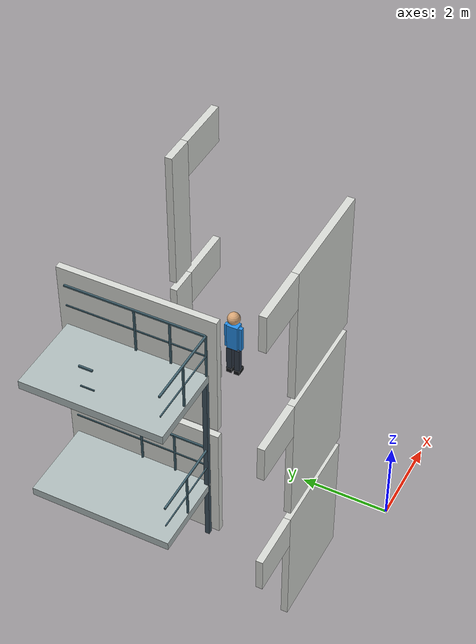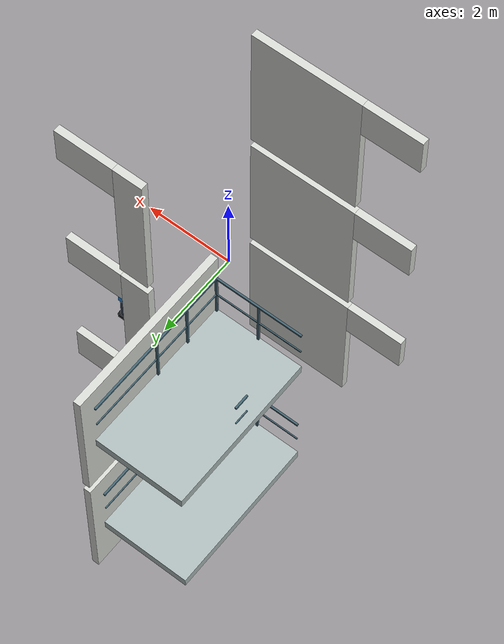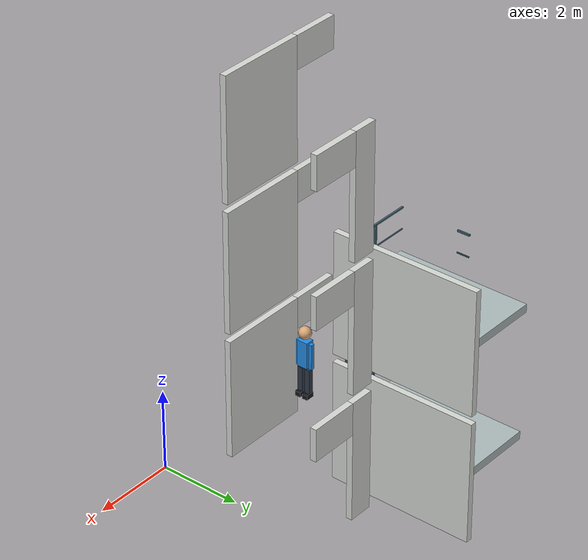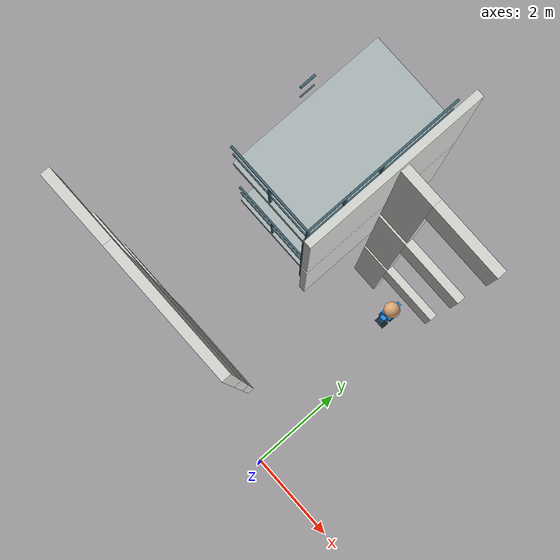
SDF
<sdf version="1.6">
 <world name="three_floor">
  <model name="f1_wall_024">
   <static>true</static>
   <pose>-2.325 0.8 1.5 0 0 0</pose>
   <link name="f1_wall_024_link">
    <collision name="f1_wall_024_collision"><geometry><box><size>2.25 0.15 3</size></box></geometry></collision>
    <visual name="f1_wall_024_visual">
     <geometry><box><size>2.25 0.15 3</size></box></geometry>
     <material><ambient>.84 .85 .83 1</ambient><diffuse>.84 .85 .83 1</diffuse></material>
    </visual>
   </link>
  </model>
  <model name="f1_wall_029">
   <static>true</static>
   <pose>-2.1 4.8 1.5 0 0 0</pose>
   <link name="f1_wall_029_link">
    <collision name="f1_wall_029_collision"><geometry><box><size>0.15 3.6 3</size></box></geometry></collision>
    <visual name="f1_wall_029_visual">
     <geometry><box><size>0.15 3.6 3</size></box></geometry>
     <material><ambient>.84 .85 .83 1</ambient><diffuse>.84 .85 .83 1</diffuse></material>
    </visual>
   </link>
  </model>
  <model name="f1_wall_036">
   <static>true</static>
   <pose>-1.4 4.2 1.5 0 0 0</pose>
   <link name="f1_wall_036_link">
    <collision name="f1_wall_036_collision"><geometry><box><size>0.6 0.15 3</size></box></geometry></collision>
    <visual name="f1_wall_036_visual">
     <geometry><box><size>0.6 0.15 3</size></box></geometry>
     <material><ambient>.84 .85 .83 1</ambient><diffuse>.84 .85 .83 1</diffuse></material>
    </visual>
   </link>
  </model>
  <model name="f1_lintel_south_west_2">
   <static>true</static>
   <pose>-4.05 0.8 2.6 0 0 0</pose>
   <link name="f1_lintel_south_west_2_link">
    <collision name="f1_lintel_south_west_2_collision">
     <geometry><box><size>1.2 0.15 0.8</size></box></geometry>
    </collision>
    <visual name="f1_lintel_south_west_2_visual">
     <geometry><box><size>1.2 0.15 0.8</size></box></geometry>
     <material><ambient>.84 .85 .83 1</ambient><diffuse>.84 .85 .83 1</diffuse></material>
    </visual>
   </link>
  </model>
  <model name="f1_lintel_lift">
   <static>true</static>
   <pose>-0.5 4.2 2.6 0 0 0</pose>
   <link name="f1_lintel_lift_link">
    <collision name="f1_lintel_lift_collision">
     <geometry><box><size>1.2 0.15 0.8</size></box></geometry>
    </collision>
    <visual name="f1_lintel_lift_visual">
     <geometry><box><size>1.2 0.15 0.8</size></box></geometry>
     <material><ambient>.84 .85 .83 1</ambient><diffuse>.84 .85 .83 1</diffuse></material>
    </visual>
   </link>
  </model>
  <model name="f2_wall_024">
   <static>true</static>
   <pose>-2.325 0.8 4.7 0 0 0</pose>
   <link name="f2_wall_024_link">
    <collision name="f2_wall_024_collision"><geometry><box><size>2.25 0.15 3</size></box></geometry></collision>
    <visual name="f2_wall_024_visual">
     <geometry><box><size>2.25 0.15 3</size></box></geometry>
     <material><ambient>.84 .85 .83 1</ambient><diffuse>.84 .85 .83 1</diffuse></material>
    </visual>
   </link>
  </model>
  <model name="f2_wall_029">
   <static>true</static>
   <pose>-2.1 4.8 4.7 0 0 0</pose>
   <link name="f2_wall_029_link">
    <collision name="f2_wall_029_collision"><geometry><box><size>0.15 3.6 3</size></box></geometry></collision>
    <visual name="f2_wall_029_visual">
     <geometry><box><size>0.15 3.6 3</size></box></geometry>
     <material><ambient>.84 .85 .83 1</ambient><diffuse>.84 .85 .83 1</diffuse></material>
    </visual>
   </link>
  </model>
  <model name="f2_wall_036">
   <static>true</static>
   <pose>-1.4 4.2 4.7 0 0 0</pose>
   <link name="f2_wall_036_link">
    <collision name="f2_wall_036_collision"><geometry><box><size>0.6 0.15 3</size></box></geometry></collision>
    <visual name="f2_wall_036_visual">
     <geometry><box><size>0.6 0.15 3</size></box></geometry>
     <material><ambient>.84 .85 .83 1</ambient><diffuse>.84 .85 .83 1</diffuse></material>
    </visual>
   </link>
  </model>
  <model name="f2_lintel_south_west_2">
   <static>true</static>
   <pose>-4.05 0.8 5.8 0 0 0</pose>
   <link name="f2_lintel_south_west_2_link">
    <collision name="f2_lintel_south_west_2_collision">
     <geometry><box><size>1.2 0.15 0.8</size></box></geometry>
    </collision>
    <visual name="f2_lintel_south_west_2_visual">
     <geometry><box><size>1.2 0.15 0.8</size></box></geometry>
     <material><ambient>.84 .85 .83 1</ambient><diffuse>.84 .85 .83 1</diffuse></material>
    </visual>
   </link>
  </model>
  <model name="f2_lintel_lift">
   <static>true</static>
   <pose>-0.5 4.2 5.8 0 0 0</pose>
   <link name="f2_lintel_lift_link">
    <collision name="f2_lintel_lift_collision">
     <geometry><box><size>1.2 0.15 0.8</size></box></geometry>
    </collision>
    <visual name="f2_lintel_lift_visual">
     <geometry><box><size>1.2 0.15 0.8</size></box></geometry>
     <material><ambient>.84 .85 .83 1</ambient><diffuse>.84 .85 .83 1</diffuse></material>
    </visual>
   </link>
  </model>
  <model name="f3_wall_024">
   <static>true</static>
   <pose>-2.325 0.8 7.9 0 0 0</pose>
   <link name="f3_wall_024_link">
    <collision name="f3_wall_024_collision"><geometry><box><size>2.25 0.15 3</size></box></geometry></collision>
    <visual name="f3_wall_024_visual">
     <geometry><box><size>2.25 0.15 3</size></box></geometry>
     <material><ambient>.84 .85 .83 1</ambient><diffuse>.84 .85 .83 1</diffuse></material>
    </visual>
   </link>
  </model>
  <model name="f3_wall_036">
   <static>true</static>
   <pose>-1.4 4.2 7.9 0 0 0</pose>
   <link name="f3_wall_036_link">
    <collision name="f3_wall_036_collision"><geometry><box><size>0.6 0.15 3</size></box></geometry></collision>
    <visual name="f3_wall_036_visual">
     <geometry><box><size>0.6 0.15 3</size></box></geometry>
     <material><ambient>.84 .85 .83 1</ambient><diffuse>.84 .85 .83 1</diffuse></material>
    </visual>
   </link>
  </model>
  <model name="f3_lintel_south_west_2">
   <static>true</static>
   <pose>-4.05 0.8 9 0 0 0</pose>
   <link name="f3_lintel_south_west_2_link">
    <collision name="f3_lintel_south_west_2_collision">
     <geometry><box><size>1.2 0.15 0.8</size></box></geometry>
    </collision>
    <visual name="f3_lintel_south_west_2_visual">
     <geometry><box><size>1.2 0.15 0.8</size></box></geometry>
     <material><ambient>.84 .85 .83 1</ambient><diffuse>.84 .85 .83 1</diffuse></material>
    </visual>
   </link>
  </model>
  <model name="f3_lintel_lift">
   <static>true</static>
   <pose>-0.5 4.2 9 0 0 0</pose>
   <link name="f3_lintel_lift_link">
    <collision name="f3_lintel_lift_collision">
     <geometry><box><size>1.2 0.15 0.8</size></box></geometry>
    </collision>
    <visual name="f3_lintel_lift_visual">
     <geometry><box><size>1.2 0.15 0.8</size></box></geometry>
     <material><ambient>.84 .85 .83 1</ambient><diffuse>.84 .85 .83 1</diffuse></material>
    </visual>
   </link>
  </model>
  <model name="f1_stair_mid_landing">
   <static>true</static>
   <pose>-3.175 4.775 1.5 0 0 0</pose>
   <link name="f1_stair_mid_landing_link">
    <collision name="f1_stair_mid_landing_collision">
     <geometry><box><size>1.85 3.25 0.2</size></box></geometry>
     <surface><friction><ode><mu>1.0</mu><mu2>1.0</mu2></ode></friction></surface>
    </collision>
    <visual name="f1_stair_mid_landing_visual">
     <geometry><box><size>1.85 3.25 0.2</size></box></geometry>
     <material>
      <ambient>0.68 0.73 0.73 1</ambient>
      <diffuse>0.68 0.73 0.73 1</diffuse>
      <specular>0.04 0.04 0.04 1</specular>
     </material>
    </visual>
   </link>
  </model>
  <model name="f1_stair_mid_south_guard_top">
   <static>true</static>
   <pose>-3.19 3.18 2.68 0 0 0</pose>
   <link name="f1_stair_mid_south_guard_top_link">
    <collision name="f1_stair_mid_south_guard_top_collision">
     <geometry><box><size>1.82 0.04 0.04</size></box></geometry>
    </collision>
    <visual name="f1_stair_mid_south_guard_top_visual">
     <geometry><box><size>1.82 0.04 0.04</size></box></geometry>
     <material>
      <ambient>0.26 0.39 0.44 1</ambient>
      <diffuse>0.26 0.39 0.44 1</diffuse>
      <specular>0.04 0.04 0.04 1</specular>
     </material>
    </visual>
   </link>
  </model>
  <model name="f1_stair_mid_south_guard_mid">
   <static>true</static>
   <pose>-3.19 3.18 2.15 0 0 0</pose>
   <link name="f1_stair_mid_south_guard_mid_link">
    <collision name="f1_stair_mid_south_guard_mid_collision">
     <geometry><box><size>1.82 0.025 0.025</size></box></geometry>
    </collision>
    <visual name="f1_stair_mid_south_guard_mid_visual">
     <geometry><box><size>1.82 0.025 0.025</size></box></geometry>
     <material>
      <ambient>0.26 0.39 0.44 1</ambient>
      <diffuse>0.26 0.39 0.44 1</diffuse>
      <specular>0.04 0.04 0.04 1</specular>
     </material>
    </visual>
   </link>
  </model>
  <model name="f1_stair_mid_south_guard_post_01">
   <static>true</static>
   <pose>-3.19 3.18 2.14 0 0 0</pose>
   <link name="f1_stair_mid_south_guard_post_01_link">
    <collision name="f1_stair_mid_south_guard_post_01_collision">
     <geometry><box><size>0.04 0.04 1.08</size></box></geometry>
    </collision>
    <visual name="f1_stair_mid_south_guard_post_01_visual">
     <geometry><box><size>0.04 0.04 1.08</size></box></geometry>
     <material>
      <ambient>0.26 0.39 0.44 1</ambient>
      <diffuse>0.26 0.39 0.44 1</diffuse>
      <specular>0.04 0.04 0.04 1</specular>
     </material>
    </visual>
   </link>
  </model>
  <model name="f1_stair_mid_south_guard_post_02">
   <static>true</static>
   <pose>-2.28 3.18 2.14 0 0 0</pose>
   <link name="f1_stair_mid_south_guard_post_02_link">
    <collision name="f1_stair_mid_south_guard_post_02_collision">
     <geometry><box><size>0.04 0.04 1.08</size></box></geometry>
    </collision>
    <visual name="f1_stair_mid_south_guard_post_02_visual">
     <geometry><box><size>0.04 0.04 1.08</size></box></geometry>
     <material>
      <ambient>0.26 0.39 0.44 1</ambient>
      <diffuse>0.26 0.39 0.44 1</diffuse>
      <specular>0.04 0.04 0.04 1</specular>
     </material>
    </visual>
   </link>
  </model>
  <model name="f1_stair_mid_east_guard_top">
   <static>true</static>
   <pose>-2.28 4.775 2.68 0 0 1.570796327</pose>
   <link name="f1_stair_mid_east_guard_top_link">
    <collision name="f1_stair_mid_east_guard_top_collision">
     <geometry><box><size>3.19 0.04 0.04</size></box></geometry>
    </collision>
    <visual name="f1_stair_mid_east_guard_top_visual">
     <geometry><box><size>3.19 0.04 0.04</size></box></geometry>
     <material>
      <ambient>0.26 0.39 0.44 1</ambient>
      <diffuse>0.26 0.39 0.44 1</diffuse>
      <specular>0.04 0.04 0.04 1</specular>
     </material>
    </visual>
   </link>
  </model>
  <model name="f1_stair_mid_east_guard_mid">
   <static>true</static>
   <pose>-2.28 4.775 2.15 0 0 1.570796327</pose>
   <link name="f1_stair_mid_east_guard_mid_link">
    <collision name="f1_stair_mid_east_guard_mid_collision">
     <geometry><box><size>3.19 0.025 0.025</size></box></geometry>
    </collision>
    <visual name="f1_stair_mid_east_guard_mid_visual">
     <geometry><box><size>3.19 0.025 0.025</size></box></geometry>
     <material>
      <ambient>0.26 0.39 0.44 1</ambient>
      <diffuse>0.26 0.39 0.44 1</diffuse>
      <specular>0.04 0.04 0.04 1</specular>
     </material>
    </visual>
   </link>
  </model>
  <model name="f1_stair_mid_east_guard_post_00">
   <static>true</static>
   <pose>-2.28 3.18 2.14 0 0 0</pose>
   <link name="f1_stair_mid_east_guard_post_00_link">
    <collision name="f1_stair_mid_east_guard_post_00_collision">
     <geometry><box><size>0.04 0.04 1.08</size></box></geometry>
    </collision>
    <visual name="f1_stair_mid_east_guard_post_00_visual">
     <geometry><box><size>0.04 0.04 1.08</size></box></geometry>
     <material>
      <ambient>0.26 0.39 0.44 1</ambient>
      <diffuse>0.26 0.39 0.44 1</diffuse>
      <specular>0.04 0.04 0.04 1</specular>
     </material>
    </visual>
   </link>
  </model>
  <model name="f1_stair_mid_east_guard_post_01">
   <static>true</static>
   <pose>-2.28 3.9775 2.14 0 0 0</pose>
   <link name="f1_stair_mid_east_guard_post_01_link">
    <collision name="f1_stair_mid_east_guard_post_01_collision">
     <geometry><box><size>0.04 0.04 1.08</size></box></geometry>
    </collision>
    <visual name="f1_stair_mid_east_guard_post_01_visual">
     <geometry><box><size>0.04 0.04 1.08</size></box></geometry>
     <material>
      <ambient>0.26 0.39 0.44 1</ambient>
      <diffuse>0.26 0.39 0.44 1</diffuse>
      <specular>0.04 0.04 0.04 1</specular>
     </material>
    </visual>
   </link>
  </model>
  <model name="f1_stair_mid_east_guard_post_02">
   <static>true</static>
   <pose>-2.28 4.775 2.14 0 0 0</pose>
   <link name="f1_stair_mid_east_guard_post_02_link">
    <collision name="f1_stair_mid_east_guard_post_02_collision">
     <geometry><box><size>0.04 0.04 1.08</size></box></geometry>
    </collision>
    <visual name="f1_stair_mid_east_guard_post_02_visual">
     <geometry><box><size>0.04 0.04 1.08</size></box></geometry>
     <material>
      <ambient>0.26 0.39 0.44 1</ambient>
      <diffuse>0.26 0.39 0.44 1</diffuse>
      <specular>0.04 0.04 0.04 1</specular>
     </material>
    </visual>
   </link>
  </model>
  <model name="f2_stair_mid_landing">
   <static>true</static>
   <pose>-3.175 4.775 4.7 0 0 0</pose>
   <link name="f2_stair_mid_landing_link">
    <collision name="f2_stair_mid_landing_collision">
     <geometry><box><size>1.85 3.25 0.2</size></box></geometry>
     <surface><friction><ode><mu>1.0</mu><mu2>1.0</mu2></ode></friction></surface>
    </collision>
    <visual name="f2_stair_mid_landing_visual">
     <geometry><box><size>1.85 3.25 0.2</size></box></geometry>
     <material>
      <ambient>0.68 0.73 0.73 1</ambient>
      <diffuse>0.68 0.73 0.73 1</diffuse>
      <specular>0.04 0.04 0.04 1</specular>
     </material>
    </visual>
   </link>
  </model>
  <model name="f2_stair_mid_south_guard_top">
   <static>true</static>
   <pose>-3.19 3.18 5.88 0 0 0</pose>
   <link name="f2_stair_mid_south_guard_top_link">
    <collision name="f2_stair_mid_south_guard_top_collision">
     <geometry><box><size>1.82 0.04 0.04</size></box></geometry>
    </collision>
    <visual name="f2_stair_mid_south_guard_top_visual">
     <geometry><box><size>1.82 0.04 0.04</size></box></geometry>
     <material>
      <ambient>0.26 0.39 0.44 1</ambient>
      <diffuse>0.26 0.39 0.44 1</diffuse>
      <specular>0.04 0.04 0.04 1</specular>
     </material>
    </visual>
   </link>
  </model>
  <model name="f2_stair_mid_south_guard_mid">
   <static>true</static>
   <pose>-3.19 3.18 5.35 0 0 0</pose>
   <link name="f2_stair_mid_south_guard_mid_link">
    <collision name="f2_stair_mid_south_guard_mid_collision">
     <geometry><box><size>1.82 0.025 0.025</size></box></geometry>
    </collision>
    <visual name="f2_stair_mid_south_guard_mid_visual">
     <geometry><box><size>1.82 0.025 0.025</size></box></geometry>
     <material>
      <ambient>0.26 0.39 0.44 1</ambient>
      <diffuse>0.26 0.39 0.44 1</diffuse>
      <specular>0.04 0.04 0.04 1</specular>
     </material>
    </visual>
   </link>
  </model>
  <model name="f2_stair_mid_south_guard_post_01">
   <static>true</static>
   <pose>-3.19 3.18 5.34 0 0 0</pose>
   <link name="f2_stair_mid_south_guard_post_01_link">
    <collision name="f2_stair_mid_south_guard_post_01_collision">
     <geometry><box><size>0.04 0.04 1.08</size></box></geometry>
    </collision>
    <visual name="f2_stair_mid_south_guard_post_01_visual">
     <geometry><box><size>0.04 0.04 1.08</size></box></geometry>
     <material>
      <ambient>0.26 0.39 0.44 1</ambient>
      <diffuse>0.26 0.39 0.44 1</diffuse>
      <specular>0.04 0.04 0.04 1</specular>
     </material>
    </visual>
   </link>
  </model>
  <model name="f2_stair_mid_south_guard_post_02">
   <static>true</static>
   <pose>-2.28 3.18 5.34 0 0 0</pose>
   <link name="f2_stair_mid_south_guard_post_02_link">
    <collision name="f2_stair_mid_south_guard_post_02_collision">
     <geometry><box><size>0.04 0.04 1.08</size></box></geometry>
    </collision>
    <visual name="f2_stair_mid_south_guard_post_02_visual">
     <geometry><box><size>0.04 0.04 1.08</size></box></geometry>
     <material>
      <ambient>0.26 0.39 0.44 1</ambient>
      <diffuse>0.26 0.39 0.44 1</diffuse>
      <specular>0.04 0.04 0.04 1</specular>
     </material>
    </visual>
   </link>
  </model>
  <model name="f2_stair_mid_east_guard_top">
   <static>true</static>
   <pose>-2.28 4.775 5.88 0 0 1.570796327</pose>
   <link name="f2_stair_mid_east_guard_top_link">
    <collision name="f2_stair_mid_east_guard_top_collision">
     <geometry><box><size>3.19 0.04 0.04</size></box></geometry>
    </collision>
    <visual name="f2_stair_mid_east_guard_top_visual">
     <geometry><box><size>3.19 0.04 0.04</size></box></geometry>
     <material>
      <ambient>0.26 0.39 0.44 1</ambient>
      <diffuse>0.26 0.39 0.44 1</diffuse>
      <specular>0.04 0.04 0.04 1</specular>
     </material>
    </visual>
   </link>
  </model>
  <model name="f2_stair_mid_east_guard_mid">
   <static>true</static>
   <pose>-2.28 4.775 5.35 0 0 1.570796327</pose>
   <link name="f2_stair_mid_east_guard_mid_link">
    <collision name="f2_stair_mid_east_guard_mid_collision">
     <geometry><box><size>3.19 0.025 0.025</size></box></geometry>
    </collision>
    <visual name="f2_stair_mid_east_guard_mid_visual">
     <geometry><box><size>3.19 0.025 0.025</size></box></geometry>
     <material>
      <ambient>0.26 0.39 0.44 1</ambient>
      <diffuse>0.26 0.39 0.44 1</diffuse>
      <specular>0.04 0.04 0.04 1</specular>
     </material>
    </visual>
   </link>
  </model>
  <model name="f2_stair_mid_east_guard_post_00">
   <static>true</static>
   <pose>-2.28 3.18 5.34 0 0 0</pose>
   <link name="f2_stair_mid_east_guard_post_00_link">
    <collision name="f2_stair_mid_east_guard_post_00_collision">
     <geometry><box><size>0.04 0.04 1.08</size></box></geometry>
    </collision>
    <visual name="f2_stair_mid_east_guard_post_00_visual">
     <geometry><box><size>0.04 0.04 1.08</size></box></geometry>
     <material>
      <ambient>0.26 0.39 0.44 1</ambient>
      <diffuse>0.26 0.39 0.44 1</diffuse>
      <specular>0.04 0.04 0.04 1</specular>
     </material>
    </visual>
   </link>
  </model>
  <model name="f2_stair_mid_east_guard_post_01">
   <static>true</static>
   <pose>-2.28 3.9775 5.34 0 0 0</pose>
   <link name="f2_stair_mid_east_guard_post_01_link">
    <collision name="f2_stair_mid_east_guard_post_01_collision">
     <geometry><box><size>0.04 0.04 1.08</size></box></geometry>
    </collision>
    <visual name="f2_stair_mid_east_guard_post_01_visual">
     <geometry><box><size>0.04 0.04 1.08</size></box></geometry>
     <material>
      <ambient>0.26 0.39 0.44 1</ambient>
      <diffuse>0.26 0.39 0.44 1</diffuse>
      <specular>0.04 0.04 0.04 1</specular>
     </material>
    </visual>
   </link>
  </model>
  <model name="f2_stair_mid_east_guard_post_02">
   <static>true</static>
   <pose>-2.28 4.775 5.34 0 0 0</pose>
   <link name="f2_stair_mid_east_guard_post_02_link">
    <collision name="f2_stair_mid_east_guard_post_02_collision">
     <geometry><box><size>0.04 0.04 1.08</size></box></geometry>
    </collision>
    <visual name="f2_stair_mid_east_guard_post_02_visual">
     <geometry><box><size>0.04 0.04 1.08</size></box></geometry>
     <material>
      <ambient>0.26 0.39 0.44 1</ambient>
      <diffuse>0.26 0.39 0.44 1</diffuse>
      <specular>0.04 0.04 0.04 1</specular>
     </material>
    </visual>
   </link>
  </model>
  <model name="f2_stair_mid_west_gap_guard_top">
   <static>true</static>
   <pose>-4.08 4.775 5.88 0 0 1.570796327</pose>
   <link name="f2_stair_mid_west_gap_guard_top_link">
    <collision name="f2_stair_mid_west_gap_guard_top_collision">
     <geometry><box><size>0.31 0.04 0.04</size></box></geometry>
    </collision>
    <visual name="f2_stair_mid_west_gap_guard_top_visual">
     <geometry><box><size>0.31 0.04 0.04</size></box></geometry>
     <material>
      <ambient>0.26 0.39 0.44 1</ambient>
      <diffuse>0.26 0.39 0.44 1</diffuse>
      <specular>0.04 0.04 0.04 1</specular>
     </material>
    </visual>
   </link>
  </model>
  <model name="f2_stair_mid_west_gap_guard_mid">
   <static>true</static>
   <pose>-4.08 4.775 5.35 0 0 1.570796327</pose>
   <link name="f2_stair_mid_west_gap_guard_mid_link">
    <collision name="f2_stair_mid_west_gap_guard_mid_collision">
     <geometry><box><size>0.31 0.025 0.025</size></box></geometry>
    </collision>
    <visual name="f2_stair_mid_west_gap_guard_mid_visual">
     <geometry><box><size>0.31 0.025 0.025</size></box></geometry>
     <material>
      <ambient>0.26 0.39 0.44 1</ambient>
      <diffuse>0.26 0.39 0.44 1</diffuse>
      <specular>0.04 0.04 0.04 1</specular>
     </material>
    </visual>
   </link>
  </model>
  <model name="f1_stair_support_column_south">
   <static>true</static>
   <pose>-2.3 3.2 2.4 0 0 0</pose>
   <link name="f1_stair_support_column_south_link">
    <collision name="f1_stair_support_column_south_collision">
     <geometry><box><size>0.1 0.1 4.8</size></box></geometry>
    </collision>
    <visual name="f1_stair_support_column_south_visual">
     <geometry><box><size>0.1 0.1 4.8</size></box></geometry>
     <material>
      <ambient>0.23 0.31 0.36 1</ambient>
      <diffuse>0.23 0.31 0.36 1</diffuse>
      <specular>0.04 0.04 0.04 1</specular>
     </material>
    </visual>
   </link>
  </model>
  <model name="f2_pedestrian">
   <static>true</static>
   <pose>-0.5 3.5 3.2 0 0 0</pose>
   <link name="f2_pedestrian_link">
    <collision name="pedestrian_solid">
     <pose>0 0 0.85 0 0 0</pose>
     <geometry><box><size>.36 .42 1.7</size></box></geometry>
    </collision>
    <visual name="head">
     <pose>0 0 1.53 0 0 0</pose>
     <geometry><sphere><radius>0.14</radius></sphere></geometry>
     <material><ambient>0.85 0.65 0.46 1</ambient><diffuse>0.85 0.65 0.46 1</diffuse></material>
    </visual>
    <visual name="torso">
     <pose>0 0 1.05 0 0 0</pose>
     <geometry><box><size>0.2 0.25 0.62</size></box></geometry>
     <material><ambient>0.14 0.55 0.9 1</ambient><diffuse>0.14 0.55 0.9 1</diffuse></material>
    </visual>
    <visual name="arm-1">
     <pose>0 -0.165 1.02 0 0 0</pose>
     <geometry><box><size>0.09 0.07 0.6</size></box></geometry>
     <material><ambient>0.14 0.55 0.9 1</ambient><diffuse>0.14 0.55 0.9 1</diffuse></material>
    </visual>
    <visual name="leg-1">
     <pose>0 -0.09 0.36 0 0 0</pose>
     <geometry><box><size>0.12 0.12 0.65</size></box></geometry>
     <material><ambient>0.18 0.22 0.28 1</ambient><diffuse>0.18 0.22 0.28 1</diffuse></material>
    </visual>
    <visual name="shoe-1">
     <pose>0.03 -0.09 0.055 0 0 0</pose>
     <geometry><box><size>0.2 0.13 0.11</size></box></geometry>
     <material><ambient>0.08 0.09 0.1 1</ambient><diffuse>0.08 0.09 0.1 1</diffuse></material>
    </visual>
    <visual name="arm1">
     <pose>0 0.165 1.02 0 0 0</pose>
     <geometry><box><size>0.09 0.07 0.6</size></box></geometry>
     <material><ambient>0.14 0.55 0.9 1</ambient><diffuse>0.14 0.55 0.9 1</diffuse></material>
    </visual>
    <visual name="leg1">
     <pose>0 0.09 0.36 0 0 0</pose>
     <geometry><box><size>0.12 0.12 0.65</size></box></geometry>
     <material><ambient>0.18 0.22 0.28 1</ambient><diffuse>0.18 0.22 0.28 1</diffuse></material>
    </visual>
    <visual name="shoe1">
     <pose>0.03 0.09 0.055 0 0 0</pose>
     <geometry><box><size>0.2 0.13 0.11</size></box></geometry>
     <material><ambient>0.08 0.09 0.1 1</ambient><diffuse>0.08 0.09 0.1 1</diffuse></material>
    </visual>
   </link>
   <plugin name="pedestrian_patrol" filename="libscene_controller.so">
    <speed>0.65</speed>
    <start_delay>6.0</start_delay>
    <initial_direction>forward</initial_direction>
    <waypoint><position>-0.5 3.5 3.2</position><pause>2</pause></waypoint>
    <waypoint><position>-0.5 1.9 3.2</position><pause>0</pause></waypoint>
    <waypoint><position>0 1.9 3.2</position><pause>0</pause></waypoint>
    <waypoint><position>0 -4.8 3.2</position><pause>0.5</pause></waypoint>
    <waypoint><position>3.35 -4.8 3.2</position><pause>0</pause></waypoint>
    <waypoint><position>3.35 -4.15 3.2</position><pause>0</pause></waypoint>
    <waypoint><position>6.7 -4.15 3.2</position><pause>2</pause></waypoint>
   </plugin>
  </model>
 </world>
</sdf>
